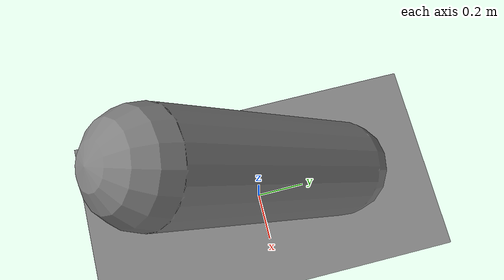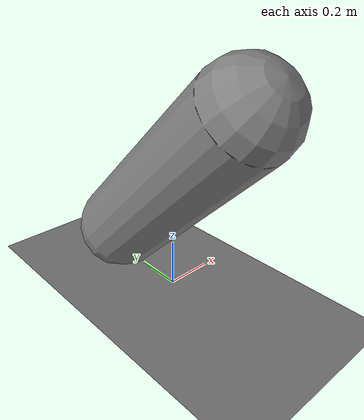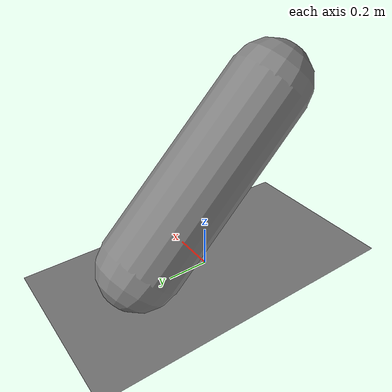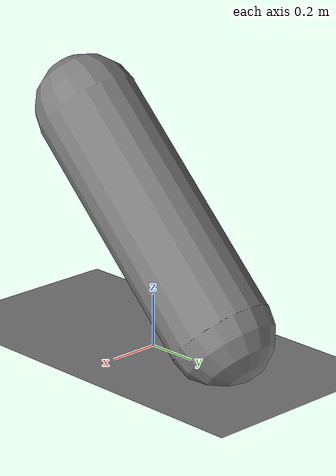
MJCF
<mujoco model="capsule_plane_tilted">
            <option gravity="0 0 0" timestep="0.001"/>
            <worldbody>
                <geom name="floor" type="plane" size="10 10 0.1"/>
                <body name="cap" pos="0 0 0.5" euler="45 0 0">
                    <joint type="free"/>
                    <geom type="capsule" size="0.2 0.5"/>
                </body>
            </worldbody>
        </mujoco>
